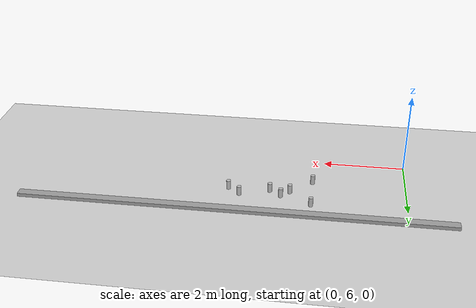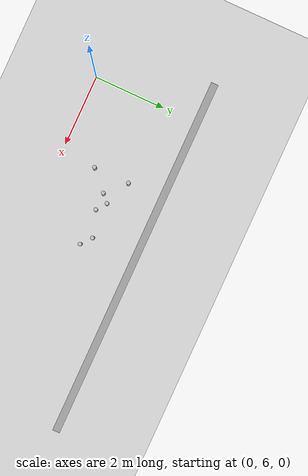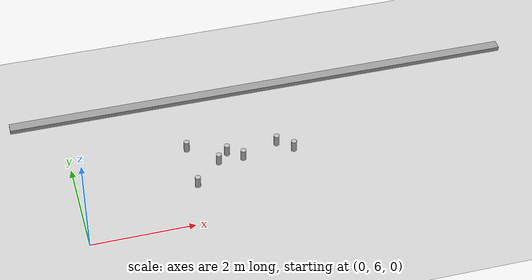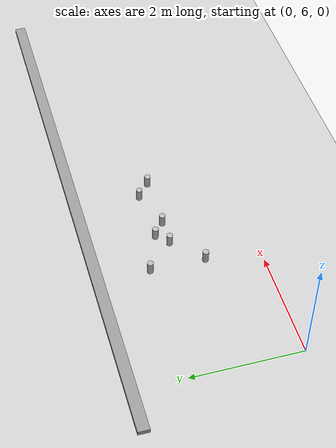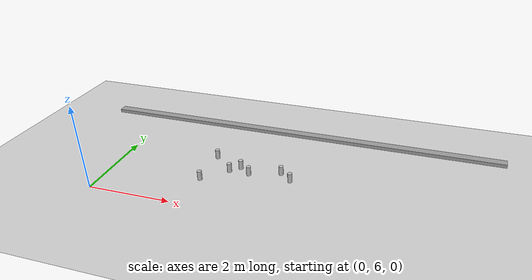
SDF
<sdf version="1.6">
 <world name="default">
  <model name="ground_plane">
   <static>1</static>
   <link name="link">
    <collision name="collision">
     <geometry><plane><normal>0 0 1</normal><size>100 100</size></plane></geometry>
     <surface><friction><ode><mu>100</mu><mu2>50</mu2></ode></friction></surface>
    </collision>
    <visual name="visual">
     <cast_shadows>0</cast_shadows>
     <geometry><plane><normal>0 0 1</normal><size>100 100</size></plane></geometry>
     <material>
      <script><uri>file://media/materials/scripts/gazebo.material</uri><name>Gazebo/Grey</name></script>
     </material>
    </visual>
   </link>
  </model>
  <model name="wall2">
   <static>1</static>
   <link name="link">
    <pose>0 0 0.42 0 -0 0</pose>
    <collision name="collision"><geometry><box><size>10 0.2 0.084</size></box></geometry></collision>
    <visual name="visual">
     <cast_shadows>0</cast_shadows>
     <geometry><box><size>10 0.2 0.084</size></box></geometry>
     <material>
      <script>
       <uri>model://grey_wall/materials/scripts</uri>
       <uri>model://grey_wall/materials/textures</uri>
       <name>vrc/grey_wall</name>
      </script>
     </material>
    </visual>
   </link>
   <pose>4.0 9.0 0 0 -0 0</pose>
  </model>
  <model name="can3.275578954057.5">
   <link name="link">
    <pose>0 0 0.115 0 -0 0</pose>
    <inertial>
     <mass>0.39</mass>
     <inertia><ixx>0.00058</ixx><ixy>0</ixy><ixz>0</ixz><iyy>0.00058</iyy><iyz>0</iyz><izz>0.00019</izz></inertia>
    </inertial>
    <collision name="collision">
     <geometry><cylinder><radius>0.055</radius><length>0.23</length></cylinder></geometry>
    </collision>
    <visual name="visual">
     <geometry><cylinder><radius>0.055</radius><length>0.23</length></cylinder></geometry>
     <material>
      <script>
       <uri>model://beer/materials/scripts</uri>
       <uri>model://beer/materials/textures</uri>
       <name>Beer/Diffuse</name>
      </script>
     </material>
    </visual>
   </link>
   <pose>3.27557895405 7.5 -2e-06 1e-06 0 -9.5e-05</pose>
  </model>
  <model name="can2.266162833828.0">
   <link name="link">
    <pose>0 0 0.115 0 -0 0</pose>
    <inertial>
     <mass>0.39</mass>
     <inertia><ixx>0.00058</ixx><ixy>0</ixy><ixz>0</ixz><iyy>0.00058</iyy><iyz>0</iyz><izz>0.00019</izz></inertia>
    </inertial>
    <collision name="collision">
     <geometry><cylinder><radius>0.055</radius><length>0.23</length></cylinder></geometry>
    </collision>
    <visual name="visual">
     <geometry><cylinder><radius>0.055</radius><length>0.23</length></cylinder></geometry>
     <material>
      <script>
       <uri>model://beer/materials/scripts</uri>
       <uri>model://beer/materials/textures</uri>
       <name>Beer/Diffuse</name>
      </script>
     </material>
    </visual>
   </link>
   <pose>2.26616283382 8.0 -2e-06 1e-06 0 -9.5e-05</pose>
  </model>
  <model name="can3.07.7043051006">
   <link name="link">
    <pose>0 0 0.115 0 -0 0</pose>
    <inertial>
     <mass>0.39</mass>
     <inertia><ixx>0.00058</ixx><ixy>0</ixy><ixz>0</ixz><iyy>0.00058</iyy><iyz>0</iyz><izz>0.00019</izz></inertia>
    </inertial>
    <collision name="collision">
     <geometry><cylinder><radius>0.055</radius><length>0.23</length></cylinder></geometry>
    </collision>
    <visual name="visual">
     <geometry><cylinder><radius>0.055</radius><length>0.23</length></cylinder></geometry>
     <material>
      <script>
       <uri>model://beer/materials/scripts</uri>
       <uri>model://beer/materials/textures</uri>
       <name>Beer/Diffuse</name>
      </script>
     </material>
    </visual>
   </link>
   <pose>3.0 7.7043051006 -2e-06 1e-06 0 -9.5e-05</pose>
  </model>
  <model name="can2.262055410537.0">
   <link name="link">
    <pose>0 0 0.115 0 -0 0</pose>
    <inertial>
     <mass>0.39</mass>
     <inertia><ixx>0.00058</ixx><ixy>0</ixy><ixz>0</ixz><iyy>0.00058</iyy><iyz>0</iyz><izz>0.00019</izz></inertia>
    </inertial>
    <collision name="collision">
     <geometry><cylinder><radius>0.055</radius><length>0.23</length></cylinder></geometry>
    </collision>
    <visual name="visual">
     <geometry><cylinder><radius>0.055</radius><length>0.23</length></cylinder></geometry>
     <material>
      <script>
       <uri>model://beer/materials/scripts</uri>
       <uri>model://beer/materials/textures</uri>
       <name>Beer/Diffuse</name>
      </script>
     </material>
    </visual>
   </link>
   <pose>2.26205541053 7.0 -2e-06 1e-06 0 -9.5e-05</pose>
  </model>
  <model name="can4.07.73429646192">
   <link name="link">
    <pose>0 0 0.115 0 -0 0</pose>
    <inertial>
     <mass>0.39</mass>
     <inertia><ixx>0.00058</ixx><ixy>0</ixy><ixz>0</ixz><iyy>0.00058</iyy><iyz>0</iyz><izz>0.00019</izz></inertia>
    </inertial>
    <collision name="collision">
     <geometry><cylinder><radius>0.055</radius><length>0.23</length></cylinder></geometry>
    </collision>
    <visual name="visual">
     <geometry><cylinder><radius>0.055</radius><length>0.23</length></cylinder></geometry>
     <material>
      <script>
       <uri>model://beer/materials/scripts</uri>
       <uri>model://beer/materials/textures</uri>
       <name>Beer/Diffuse</name>
      </script>
     </material>
    </visual>
   </link>
   <pose>4.0 7.73429646192 -2e-06 1e-06 0 -9.5e-05</pose>
  </model>
  <model name="can2.790747221497.5">
   <link name="link">
    <pose>0 0 0.115 0 -0 0</pose>
    <inertial>
     <mass>0.39</mass>
     <inertia><ixx>0.00058</ixx><ixy>0</ixy><ixz>0</ixz><iyy>0.00058</iyy><iyz>0</iyz><izz>0.00019</izz></inertia>
    </inertial>
    <collision name="collision">
     <geometry><cylinder><radius>0.055</radius><length>0.23</length></cylinder></geometry>
    </collision>
    <visual name="visual">
     <geometry><cylinder><radius>0.055</radius><length>0.23</length></cylinder></geometry>
     <material>
      <script>
       <uri>model://beer/materials/scripts</uri>
       <uri>model://beer/materials/textures</uri>
       <name>Beer/Diffuse</name>
      </script>
     </material>
    </visual>
   </link>
   <pose>2.79074722149 7.5 -2e-06 1e-06 0 -9.5e-05</pose>
  </model>
  <model name="can4.288030427877.5">
   <link name="link">
    <pose>0 0 0.115 0 -0 0</pose>
    <inertial>
     <mass>0.39</mass>
     <inertia><ixx>0.00058</ixx><ixy>0</ixy><ixz>0</ixz><iyy>0.00058</iyy><iyz>0</iyz><izz>0.00019</izz></inertia>
    </inertial>
    <collision name="collision">
     <geometry><cylinder><radius>0.055</radius><length>0.23</length></cylinder></geometry>
    </collision>
    <visual name="visual">
     <geometry><cylinder><radius>0.055</radius><length>0.23</length></cylinder></geometry>
     <material>
      <script>
       <uri>model://beer/materials/scripts</uri>
       <uri>model://beer/materials/textures</uri>
       <name>Beer/Diffuse</name>
      </script>
     </material>
    </visual>
   </link>
   <pose>4.28803042787 7.5 -2e-06 1e-06 0 -9.5e-05</pose>
  </model>
 </world>
</sdf>
